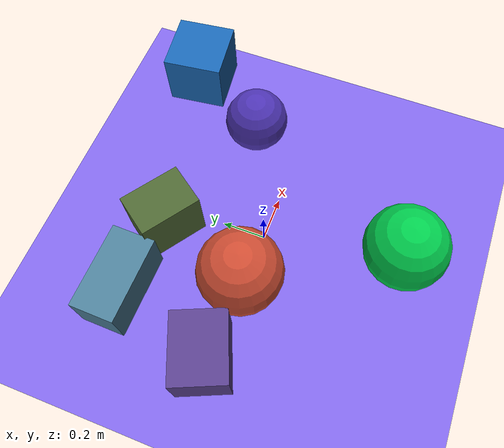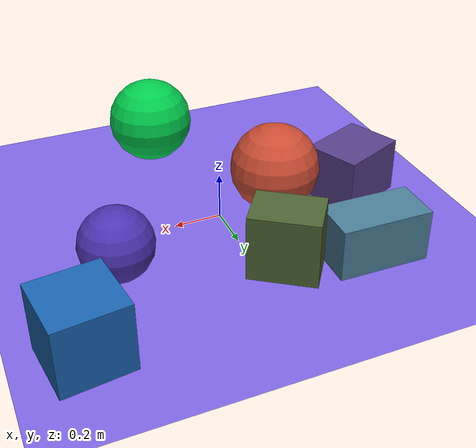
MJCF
<mujoco>
   <asset>
<texture type="skybox" builtin="gradient" rgb1="0.1 0.4 0.4" rgb2="0.3 0.8 0.4" width="256" height="256"/>
<texture name="flat_0" builtin="flat" rgb1="0.0 0.8 0.3" rgb2="0.0 0.8 0.3"  width="200" height="200"/>
<texture name="flat_1" builtin="flat" rgb1="0.8 0.3 0.2" rgb2="0.8 0.3 0.2"  width="200" height="200"/>
<texture name="gradient_2" builtin="gradient" rgb1="0.1 0.6 0.1" rgb2="0.5 0.2 0.3" width="200" height="200"/>
<texture name="flat_3" builtin="flat" rgb1="0.3 0.5 0.6" rgb2="0.3 0.5 0.6"  width="200" height="200"/>
<texture name="gradient_4" builtin="gradient" rgb1="0.1 0.3 0.7" rgb2="0.6 0.2 0.4" width="200" height="200"/>
<texture name="flat_5" builtin="flat" rgb1="0.1 0.4 0.7" rgb2="0.1 0.4 0.7"  width="200" height="200"/>
<texture name="flat_6" builtin="flat" rgb1="0.3 0.2 0.7" rgb2="0.3 0.2 0.7"  width="200" height="200"/><material name="flat_0_mat" reflectance="0" texture="flat_0" texuniform="true"/>
<material name="flat_1_mat" reflectance="0" texture="flat_1" texuniform="true"/>
<material name="gradient_2_mat" reflectance="0" texture="gradient_2" texuniform="true"/>
<material name="flat_3_mat" reflectance="0" texture="flat_3" texuniform="true"/>
<material name="gradient_4_mat" reflectance="0" texture="gradient_4" texuniform="true"/>
<material name="flat_5_mat" reflectance="0" texture="flat_5" texuniform="true"/>
<material name="flat_6_mat" reflectance="0" texture="flat_6" texuniform="true"/>
   </asset>

   <worldbody>
      <light diffuse=".9 .9 .9" pos="0 0 3" dir="0 0 -1"/>
     <geom type="plane" size="1 1 0.1" rgba="0.5 0.4 0.9 1"/>
<geom type="sphere" pos="0.1 -0.62 0.19" size="0.19 0.19 0.19" material="flat_0_mat" euler="0 0 84" />
<geom type="sphere" pos="-0.25 0.01 0.19" size="0.19 0.19 0.19" material="flat_1_mat" euler="0 0 4" />
<geom type="box" pos="-0.1 0.44 0.14" size="0.1 0.14 0.14" material="gradient_2_mat" euler="0 0 55" />
<geom type="box" pos="-0.45 0.5 0.11" size="0.1 0.19 0.11" material="flat_3_mat" euler="0 0 89" />
<geom type="box" pos="-0.61 0.04 0.12" size="0.15 0.12 0.12" material="gradient_4_mat" euler="0 0 23" />
<geom type="box" pos="0.74 0.62 0.14" size="0.14 0.14 0.14" material="flat_5_mat" euler="0 0 7" />
<geom type="sphere" pos="0.51 0.23 0.15" size="0.15 0.15 0.15" material="flat_6_mat" euler="0 0 62" /><camera euler="60 0 180" fovy="60" name="camera1" pos="-0.2 -1.5 1"></camera>   </worldbody>
</mujoco>
